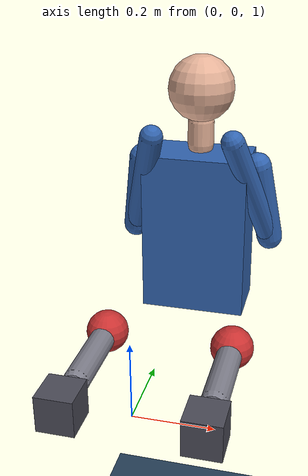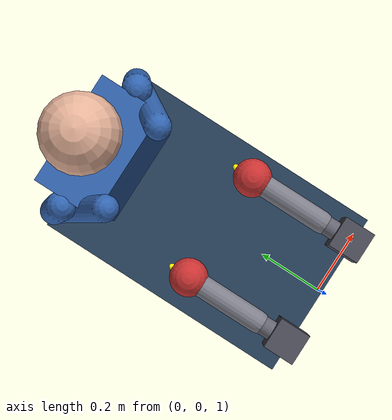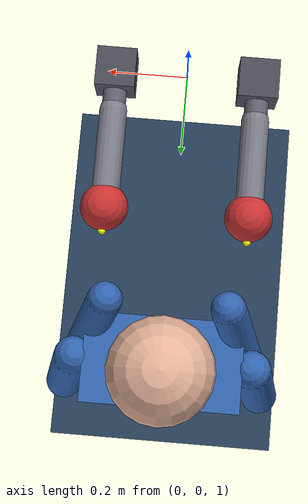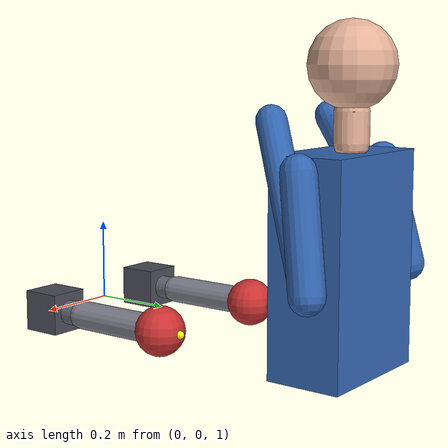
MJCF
<mujoco model="boxing_twin_scene">
  <compiler angle="radian" autolimits="true"/>
  <option timestep="0.002" gravity="0 0 -9.81" integrator="implicitfast"/>

  <visual>
    <headlight diffuse="0.6 0.6 0.6" ambient="0.3 0.3 0.3" specular="0 0 0"/>
    <rgba haze="0.15 0.25 0.35 1"/>
    <global azimuth="120" elevation="-20" offwidth="1280" offheight="720"/>
  </visual>

  <asset>
    <texture name="grid" type="2d" builtin="checker" rgb1="0.1 0.2 0.3" rgb2="0.2 0.3 0.4"
             width="300" height="300"/>
    <material name="grid" texture="grid" texrepeat="8 8" reflectance="0.2"/>
  </asset>

  <worldbody>
    <light pos="0 0 3" dir="0 0 -1" directional="true"/>
    <geom name="floor" type="plane" size="3 3 0.1" material="grid"/>
  </worldbody>

  <include file="robot/striker_arm.xml"/>
  <include file="trainee/humanoid.xml"/>
</mujoco>

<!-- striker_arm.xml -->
<mujoco model="striker_arms">
  <default>
    <default class="motor_stage">
      <joint type="slide" axis="0 1 0" range="0 0.8" damping="2.0"/>
      <geom type="cylinder" size="0.03" rgba="0.40 0.40 0.45 1" mass="1.5"/>
    </default>
    <default class="spring_stage">
      <joint type="slide" axis="0 1 0" range="-0.05 0.05" stiffness="3000" damping="20"
             springref="0"/>
      <geom type="capsule" size="0.035" rgba="0.50 0.50 0.55 1" mass="1.0"/>
    </default>
    <default class="glove">
      <geom type="sphere" size="0.06" rgba="0.80 0.20 0.20 1" mass="0.4"
            solref="0.02 1" solimp="0.9 0.95 0.001"/>
    </default>
  </default>

  <worldbody>
    <!-- arm0 (left) -->
    <body name="arm0_base" pos="-0.18 0 1.0">
      <geom name="arm0_mount" type="box" size="0.05 0.05 0.05" rgba="0.30 0.30 0.35 1" mass="2"/>
      <body name="arm0_motor" pos="0 0 0">
        <joint name="arm0_motor" class="motor_stage"/>
        <geom name="arm0_motor_geom" class="motor_stage" fromto="0 0 0 0 0.10 0"/>
        <body name="arm0_forearm" pos="0 0.10 0">
          <joint name="arm0_spring" class="spring_stage"/>
          <geom name="arm0_forearm_geom" class="spring_stage" fromto="0 0 0 0 0.25 0"/>
          <body name="arm0_glove" pos="0 0.25 0">
            <geom name="arm0_glove_geom" class="glove"/>
            <site name="arm0_glove_tip" pos="0 0.06 0" size="0.01" rgba="1 1 0 1"/>
          </body>
        </body>
      </body>
    </body>

    <!-- arm1 (right) -->
    <body name="arm1_base" pos="0.18 0 1.0">
      <geom name="arm1_mount" type="box" size="0.05 0.05 0.05" rgba="0.30 0.30 0.35 1" mass="2"/>
      <body name="arm1_motor" pos="0 0 0">
        <joint name="arm1_motor" class="motor_stage"/>
        <geom name="arm1_motor_geom" class="motor_stage" fromto="0 0 0 0 0.10 0"/>
        <body name="arm1_forearm" pos="0 0.10 0">
          <joint name="arm1_spring" class="spring_stage"/>
          <geom name="arm1_forearm_geom" class="spring_stage" fromto="0 0 0 0 0.25 0"/>
          <body name="arm1_glove" pos="0 0.25 0">
            <geom name="arm1_glove_geom" class="glove"/>
            <site name="arm1_glove_tip" pos="0 0.06 0" size="0.01" rgba="1 1 0 1"/>
          </body>
        </body>
      </body>
    </body>
  </worldbody>

  <actuator>
    <position name="arm0_motor_act" joint="arm0_motor" kp="500" ctrlrange="0 0.8"/>
    <position name="arm1_motor_act" joint="arm1_motor" kp="500" ctrlrange="0 0.8"/>
  </actuator>

  <sensor>
    <jointpos name="arm0_spring_pos" joint="arm0_spring"/>
    <jointpos name="arm1_spring_pos" joint="arm1_spring"/>
  </sensor>
</mujoco>

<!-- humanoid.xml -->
<mujoco model="trainee">
  <worldbody>
    <body name="trainee" pos="0 0 0">
      <!-- Visual body, facing -y toward the robot. -->
      <geom name="torso_geom" type="box" pos="0 0.73 1.18" size="0.16 0.09 0.25"
            rgba="0.20 0.40 0.70 1"/>
      <geom name="head_geom" type="sphere" pos="0 0.75 1.62" size="0.10"
            rgba="0.90 0.70 0.60 1"/>
      <geom name="neck_geom" type="capsule" fromto="0 0.75 1.45 0 0.75 1.52" size="0.04"
            rgba="0.90 0.70 0.60 1"/>
      <geom name="l_upper_arm" type="capsule" fromto="0.18 0.73 1.40 0.22 0.78 1.15"
            size="0.04" rgba="0.20 0.40 0.70 1"/>
      <geom name="r_upper_arm" type="capsule" fromto="-0.18 0.73 1.40 -0.22 0.78 1.15"
            size="0.04" rgba="0.20 0.40 0.70 1"/>
      <geom name="l_forearm" type="capsule" fromto="0.22 0.78 1.15 0.12 0.62 1.50"
            size="0.035" rgba="0.20 0.40 0.70 1"/>
      <geom name="r_forearm" type="capsule" fromto="-0.22 0.78 1.15 -0.12 0.62 1.50"
            size="0.035" rgba="0.20 0.40 0.70 1"/>

      <!-- Ground-truth keypoints. Order and names mirror core.types.Keypoint. -->
      <site name="kp_head" pos="0 0.75 1.62" size="0.02" rgba="1 0 0 0.6"/>
      <site name="kp_neck" pos="0 0.75 1.45" size="0.02" rgba="1 0.5 0 0.6"/>
      <site name="kp_chest" pos="0 0.72 1.25" size="0.02" rgba="1 1 0 0.6"/>
      <site name="kp_l_shoulder" pos="0.18 0.73 1.40" size="0.02" rgba="0 1 0 0.6"/>
      <site name="kp_r_shoulder" pos="-0.18 0.73 1.40" size="0.02" rgba="0 1 0 0.6"/>
      <site name="kp_l_elbow" pos="0.22 0.78 1.15" size="0.02" rgba="0 1 1 0.6"/>
      <site name="kp_r_elbow" pos="-0.22 0.78 1.15" size="0.02" rgba="0 1 1 0.6"/>
      <site name="kp_l_hand" pos="0.12 0.62 1.50" size="0.02" rgba="0 0 1 0.6"/>
      <site name="kp_r_hand" pos="-0.12 0.62 1.50" size="0.02" rgba="0 0 1 0.6"/>
    </body>
  </worldbody>
</mujoco>
